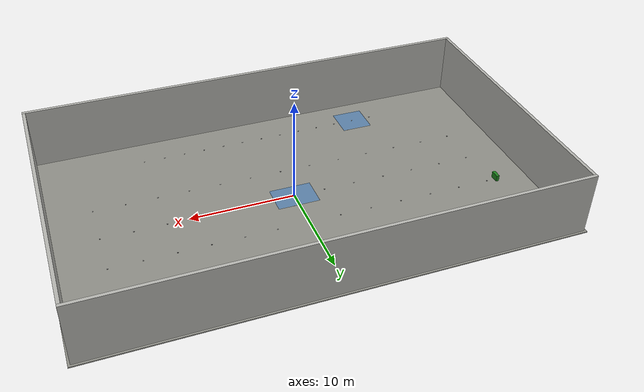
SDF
<sdf version="1.6">
 <world name="warehouse">
  <model name="warehouse_shell">
   <static>true</static>
   <link name="link">
    <visual name="floor_v">
     <pose>0.0000 0.0000 -0.0500 0 0 0.0000</pose>
     <geometry><box><size>45.0000 27.0000 0.1000</size></box></geometry>
     <material>
      <ambient>0.55 0.55 0.52 1</ambient>
      <diffuse>0.55 0.55 0.52 1</diffuse>
      <specular>0.1 0.1 0.1 1</specular>
     </material>
    </visual>
    <collision name="floor_c">
     <pose>0.0000 0.0000 -0.0500 0 0 0.0000</pose>
     <geometry><box><size>45.0000 27.0000 0.1000</size></box></geometry>
     <surface><friction><ode><mu>0.9</mu><mu2>0.9</mu2></ode></friction></surface>
    </collision>
    <visual name="wall_n_v">
     <pose>0.0000 13.1500 3.0000 0 0 0.0000</pose>
     <geometry><box><size>44.6000 0.3000 6.0000</size></box></geometry>
     <material>
      <ambient>0.7 0.7 0.68 1</ambient>
      <diffuse>0.7 0.7 0.68 1</diffuse>
      <specular>0.1 0.1 0.1 1</specular>
     </material>
    </visual>
    <collision name="wall_n_c">
     <pose>0.0000 13.1500 3.0000 0 0 0.0000</pose>
     <geometry><box><size>44.6000 0.3000 6.0000</size></box></geometry>
    </collision>
    <visual name="wall_s_v">
     <pose>0.0000 -13.1500 3.0000 0 0 0.0000</pose>
     <geometry><box><size>44.6000 0.3000 6.0000</size></box></geometry>
     <material>
      <ambient>0.7 0.7 0.68 1</ambient>
      <diffuse>0.7 0.7 0.68 1</diffuse>
      <specular>0.1 0.1 0.1 1</specular>
     </material>
    </visual>
    <collision name="wall_s_c">
     <pose>0.0000 -13.1500 3.0000 0 0 0.0000</pose>
     <geometry><box><size>44.6000 0.3000 6.0000</size></box></geometry>
    </collision>
    <visual name="wall_e_v">
     <pose>22.1500 0.0000 3.0000 0 0 0.0000</pose>
     <geometry><box><size>0.3000 26.0000 6.0000</size></box></geometry>
     <material>
      <ambient>0.7 0.7 0.68 1</ambient>
      <diffuse>0.7 0.7 0.68 1</diffuse>
      <specular>0.1 0.1 0.1 1</specular>
     </material>
    </visual>
    <collision name="wall_e_c">
     <pose>22.1500 0.0000 3.0000 0 0 0.0000</pose>
     <geometry><box><size>0.3000 26.0000 6.0000</size></box></geometry>
    </collision>
    <visual name="wall_w_v">
     <pose>-22.1500 0.0000 3.0000 0 0 0.0000</pose>
     <geometry><box><size>0.3000 26.0000 6.0000</size></box></geometry>
     <material>
      <ambient>0.7 0.7 0.68 1</ambient>
      <diffuse>0.7 0.7 0.68 1</diffuse>
      <specular>0.1 0.1 0.1 1</specular>
     </material>
    </visual>
    <collision name="wall_w_c">
     <pose>-22.1500 0.0000 3.0000 0 0 0.0000</pose>
     <geometry><box><size>0.3000 26.0000 6.0000</size></box></geometry>
    </collision>
    <visual name="slip_slip_patch_B_v">
     <pose>0.0000 0.0000 0.0005 0 0 0.0000</pose>
     <geometry><box><size>4.0000 2.8000 0.0010</size></box></geometry>
     <material>
      <ambient>0.35 0.5 0.65 1</ambient>
      <diffuse>0.35 0.5 0.65 1</diffuse>
      <specular>0.1 0.1 0.1 1</specular>
     </material>
    </visual>
    <collision name="slip_slip_patch_B_c">
     <pose>0.0000 0.0000 0.0005 0 0 0.0000</pose>
     <geometry><box><size>4.0000 2.8000 0.0010</size></box></geometry>
     <surface><friction><ode><mu>0.06</mu><mu2>0.06</mu2></ode></friction></surface>
    </collision>
    <visual name="slip_slip_patch_spin_v">
     <pose>-10.0000 -10.0000 0.0005 0 0 0.0000</pose>
     <geometry><box><size>3.0000 3.0000 0.0010</size></box></geometry>
     <material>
      <ambient>0.35 0.5 0.65 1</ambient>
      <diffuse>0.35 0.5 0.65 1</diffuse>
      <specular>0.1 0.1 0.1 1</specular>
     </material>
    </visual>
    <collision name="slip_slip_patch_spin_c">
     <pose>-10.0000 -10.0000 0.0005 0 0 0.0000</pose>
     <geometry><box><size>3.0000 3.0000 0.0010</size></box></geometry>
     <surface><friction><ode><mu>0.06</mu><mu2>0.06</mu2></ode></friction></surface>
    </collision>
    <visual name="qr0_v">
     <pose>-18.0000 4.0000 0.0015 0 0 0.0000</pose>
     <geometry><box><size>0.1200 0.1200 0.0010</size></box></geometry>
     <material>
      <ambient>0.02 0.02 0.02 1</ambient>
      <diffuse>0.02 0.02 0.02 1</diffuse>
      <specular>0.1 0.1 0.1 1</specular>
     </material>
    </visual>
    <visual name="qr0_in_v">
     <pose>-18.0000 4.0000 0.0021 0 0 0.0000</pose>
     <geometry><box><size>0.0480 0.0480 0.0010</size></box></geometry>
     <material>
      <ambient>0.95 0.95 0.95 1</ambient>
      <diffuse>0.95 0.95 0.95 1</diffuse>
      <specular>0.1 0.1 0.1 1</specular>
     </material>
    </visual>
    <visual name="qr1_v">
     <pose>-15.0000 4.0000 0.0015 0 0 0.0000</pose>
     <geometry><box><size>0.1200 0.1200 0.0010</size></box></geometry>
     <material>
      <ambient>0.02 0.02 0.02 1</ambient>
      <diffuse>0.02 0.02 0.02 1</diffuse>
      <specular>0.1 0.1 0.1 1</specular>
     </material>
    </visual>
    <visual name="qr1_in_v">
     <pose>-15.0000 4.0000 0.0021 0 0 0.0000</pose>
     <geometry><box><size>0.0480 0.0480 0.0010</size></box></geometry>
     <material>
      <ambient>0.95 0.95 0.95 1</ambient>
      <diffuse>0.95 0.95 0.95 1</diffuse>
      <specular>0.1 0.1 0.1 1</specular>
     </material>
    </visual>
    <visual name="qr2_v">
     <pose>-12.0000 4.0000 0.0015 0 0 0.0000</pose>
     <geometry><box><size>0.1200 0.1200 0.0010</size></box></geometry>
     <material>
      <ambient>0.02 0.02 0.02 1</ambient>
      <diffuse>0.02 0.02 0.02 1</diffuse>
      <specular>0.1 0.1 0.1 1</specular>
     </material>
    </visual>
    <visual name="qr2_in_v">
     <pose>-12.0000 4.0000 0.0021 0 0 0.0000</pose>
     <geometry><box><size>0.0480 0.0480 0.0010</size></box></geometry>
     <material>
      <ambient>0.95 0.95 0.95 1</ambient>
      <diffuse>0.95 0.95 0.95 1</diffuse>
      <specular>0.1 0.1 0.1 1</specular>
     </material>
    </visual>
    <visual name="qr3_v">
     <pose>-9.0000 4.0000 0.0015 0 0 0.0000</pose>
     <geometry><box><size>0.1200 0.1200 0.0010</size></box></geometry>
     <material>
      <ambient>0.02 0.02 0.02 1</ambient>
      <diffuse>0.02 0.02 0.02 1</diffuse>
      <specular>0.1 0.1 0.1 1</specular>
     </material>
    </visual>
    <visual name="qr3_in_v">
     <pose>-9.0000 4.0000 0.0021 0 0 0.0000</pose>
     <geometry><box><size>0.0480 0.0480 0.0010</size></box></geometry>
     <material>
      <ambient>0.95 0.95 0.95 1</ambient>
      <diffuse>0.95 0.95 0.95 1</diffuse>
      <specular>0.1 0.1 0.1 1</specular>
     </material>
    </visual>
    <visual name="qr4_v">
     <pose>-6.0000 4.0000 0.0015 0 0 0.0000</pose>
     <geometry><box><size>0.1200 0.1200 0.0010</size></box></geometry>
     <material>
      <ambient>0.02 0.02 0.02 1</ambient>
      <diffuse>0.02 0.02 0.02 1</diffuse>
      <specular>0.1 0.1 0.1 1</specular>
     </material>
    </visual>
    <visual name="qr4_in_v">
     <pose>-6.0000 4.0000 0.0021 0 0 0.0000</pose>
     <geometry><box><size>0.0480 0.0480 0.0010</size></box></geometry>
     <material>
      <ambient>0.95 0.95 0.95 1</ambient>
      <diffuse>0.95 0.95 0.95 1</diffuse>
      <specular>0.1 0.1 0.1 1</specular>
     </material>
    </visual>
    <visual name="qr5_v">
     <pose>-3.0000 4.0000 0.0015 0 0 0.0000</pose>
     <geometry><box><size>0.1200 0.1200 0.0010</size></box></geometry>
     <material>
      <ambient>0.02 0.02 0.02 1</ambient>
      <diffuse>0.02 0.02 0.02 1</diffuse>
      <specular>0.1 0.1 0.1 1</specular>
     </material>
    </visual>
    <visual name="qr5_in_v">
     <pose>-3.0000 4.0000 0.0021 0 0 0.0000</pose>
     <geometry><box><size>0.0480 0.0480 0.0010</size></box></geometry>
     <material>
      <ambient>0.95 0.95 0.95 1</ambient>
      <diffuse>0.95 0.95 0.95 1</diffuse>
      <specular>0.1 0.1 0.1 1</specular>
     </material>
    </visual>
    <visual name="qr6_v">
     <pose>0.0000 4.0000 0.0015 0 0 0.0000</pose>
     <geometry><box><size>0.1200 0.1200 0.0010</size></box></geometry>
     <material>
      <ambient>0.02 0.02 0.02 1</ambient>
      <diffuse>0.02 0.02 0.02 1</diffuse>
      <specular>0.1 0.1 0.1 1</specular>
     </material>
    </visual>
    <visual name="qr6_in_v">
     <pose>0.0000 4.0000 0.0021 0 0 0.0000</pose>
     <geometry><box><size>0.0480 0.0480 0.0010</size></box></geometry>
     <material>
      <ambient>0.95 0.95 0.95 1</ambient>
      <diffuse>0.95 0.95 0.95 1</diffuse>
      <specular>0.1 0.1 0.1 1</specular>
     </material>
    </visual>
    <visual name="qr7_v">
     <pose>3.0000 4.0000 0.0015 0 0 0.0000</pose>
     <geometry><box><size>0.1200 0.1200 0.0010</size></box></geometry>
     <material>
      <ambient>0.02 0.02 0.02 1</ambient>
      <diffuse>0.02 0.02 0.02 1</diffuse>
      <specular>0.1 0.1 0.1 1</specular>
     </material>
    </visual>
    <visual name="qr7_in_v">
     <pose>3.0000 4.0000 0.0021 0 0 0.0000</pose>
     <geometry><box><size>0.0480 0.0480 0.0010</size></box></geometry>
     <material>
      <ambient>0.95 0.95 0.95 1</ambient>
      <diffuse>0.95 0.95 0.95 1</diffuse>
      <specular>0.1 0.1 0.1 1</specular>
     </material>
    </visual>
    <visual name="qr8_v">
     <pose>6.0000 4.0000 0.0015 0 0 0.0000</pose>
     <geometry><box><size>0.1200 0.1200 0.0010</size></box></geometry>
     <material>
      <ambient>0.02 0.02 0.02 1</ambient>
      <diffuse>0.02 0.02 0.02 1</diffuse>
      <specular>0.1 0.1 0.1 1</specular>
     </material>
    </visual>
    <visual name="qr8_in_v">
     <pose>6.0000 4.0000 0.0021 0 0 0.0000</pose>
     <geometry><box><size>0.0480 0.0480 0.0010</size></box></geometry>
     <material>
      <ambient>0.95 0.95 0.95 1</ambient>
      <diffuse>0.95 0.95 0.95 1</diffuse>
      <specular>0.1 0.1 0.1 1</specular>
     </material>
    </visual>
    <visual name="qr9_v">
     <pose>9.0000 4.0000 0.0015 0 0 0.0000</pose>
     <geometry><box><size>0.1200 0.1200 0.0010</size></box></geometry>
     <material>
      <ambient>0.02 0.02 0.02 1</ambient>
      <diffuse>0.02 0.02 0.02 1</diffuse>
      <specular>0.1 0.1 0.1 1</specular>
     </material>
    </visual>
    <visual name="qr9_in_v">
     <pose>9.0000 4.0000 0.0021 0 0 0.0000</pose>
     <geometry><box><size>0.0480 0.0480 0.0010</size></box></geometry>
     <material>
      <ambient>0.95 0.95 0.95 1</ambient>
      <diffuse>0.95 0.95 0.95 1</diffuse>
      <specular>0.1 0.1 0.1 1</specular>
     </material>
    </visual>
    <visual name="qr10_v">
     <pose>12.0000 4.0000 0.0015 0 0 0.0000</pose>
     <geometry><box><size>0.1200 0.1200 0.0010</size></box></geometry>
     <material>
      <ambient>0.02 0.02 0.02 1</ambient>
      <diffuse>0.02 0.02 0.02 1</diffuse>
      <specular>0.1 0.1 0.1 1</specular>
     </material>
    </visual>
    <visual name="qr10_in_v">
     <pose>12.0000 4.0000 0.0021 0 0 0.0000</pose>
     <geometry><box><size>0.0480 0.0480 0.0010</size></box></geometry>
     <material>
      <ambient>0.95 0.95 0.95 1</ambient>
      <diffuse>0.95 0.95 0.95 1</diffuse>
      <specular>0.1 0.1 0.1 1</specular>
     </material>
    </visual>
    <visual name="qr11_v">
     <pose>15.0000 4.0000 0.0015 0 0 0.0000</pose>
     <geometry><box><size>0.1200 0.1200 0.0010</size></box></geometry>
     <material>
      <ambient>0.02 0.02 0.02 1</ambient>
      <diffuse>0.02 0.02 0.02 1</diffuse>
      <specular>0.1 0.1 0.1 1</specular>
     </material>
    </visual>
    <visual name="qr11_in_v">
     <pose>15.0000 4.0000 0.0021 0 0 0.0000</pose>
     <geometry><box><size>0.0480 0.0480 0.0010</size></box></geometry>
     <material>
      <ambient>0.95 0.95 0.95 1</ambient>
      <diffuse>0.95 0.95 0.95 1</diffuse>
      <specular>0.1 0.1 0.1 1</specular>
     </material>
    </visual>
    <visual name="qr12_v">
     <pose>18.0000 4.0000 0.0015 0 0 0.0000</pose>
     <geometry><box><size>0.1200 0.1200 0.0010</size></box></geometry>
     <material>
      <ambient>0.02 0.02 0.02 1</ambient>
      <diffuse>0.02 0.02 0.02 1</diffuse>
      <specular>0.1 0.1 0.1 1</specular>
     </material>
    </visual>
    <visual name="qr12_in_v">
     <pose>18.0000 4.0000 0.0021 0 0 0.0000</pose>
     <geometry><box><size>0.0480 0.0480 0.0010</size></box></geometry>
     <material>
      <ambient>0.95 0.95 0.95 1</ambient>
      <diffuse>0.95 0.95 0.95 1</diffuse>
      <specular>0.1 0.1 0.1 1</specular>
     </material>
    </visual>
    <visual name="qr13_v">
     <pose>-18.0000 0.0000 0.0015 0 0 0.0000</pose>
     <geometry><box><size>0.1200 0.1200 0.0010</size></box></geometry>
     <material>
      <ambient>0.02 0.02 0.02 1</ambient>
      <diffuse>0.02 0.02 0.02 1</diffuse>
      <specular>0.1 0.1 0.1 1</specular>
     </material>
    </visual>
    <visual name="qr13_in_v">
     <pose>-18.0000 0.0000 0.0021 0 0 0.0000</pose>
     <geometry><box><size>0.0480 0.0480 0.0010</size></box></geometry>
     <material>
      <ambient>0.95 0.95 0.95 1</ambient>
      <diffuse>0.95 0.95 0.95 1</diffuse>
      <specular>0.1 0.1 0.1 1</specular>
     </material>
    </visual>
    <visual name="qr14_v">
     <pose>-15.0000 0.0000 0.0015 0 0 0.0000</pose>
     <geometry><box><size>0.1200 0.1200 0.0010</size></box></geometry>
     <material>
      <ambient>0.02 0.02 0.02 1</ambient>
      <diffuse>0.02 0.02 0.02 1</diffuse>
      <specular>0.1 0.1 0.1 1</specular>
     </material>
    </visual>
    <visual name="qr14_in_v">
     <pose>-15.0000 0.0000 0.0021 0 0 0.0000</pose>
     <geometry><box><size>0.0480 0.0480 0.0010</size></box></geometry>
     <material>
      <ambient>0.95 0.95 0.95 1</ambient>
      <diffuse>0.95 0.95 0.95 1</diffuse>
      <specular>0.1 0.1 0.1 1</specular>
     </material>
    </visual>
    <visual name="qr15_v">
     <pose>-12.0000 0.0000 0.0015 0 0 0.0000</pose>
     <geometry><box><size>0.1200 0.1200 0.0010</size></box></geometry>
     <material>
      <ambient>0.02 0.02 0.02 1</ambient>
      <diffuse>0.02 0.02 0.02 1</diffuse>
      <specular>0.1 0.1 0.1 1</specular>
     </material>
    </visual>
    <visual name="qr15_in_v">
     <pose>-12.0000 0.0000 0.0021 0 0 0.0000</pose>
     <geometry><box><size>0.0480 0.0480 0.0010</size></box></geometry>
     <material>
      <ambient>0.95 0.95 0.95 1</ambient>
      <diffuse>0.95 0.95 0.95 1</diffuse>
      <specular>0.1 0.1 0.1 1</specular>
     </material>
    </visual>
    <visual name="qr16_v">
     <pose>-9.0000 0.0000 0.0015 0 0 0.0000</pose>
     <geometry><box><size>0.1200 0.1200 0.0010</size></box></geometry>
     <material>
      <ambient>0.02 0.02 0.02 1</ambient>
      <diffuse>0.02 0.02 0.02 1</diffuse>
      <specular>0.1 0.1 0.1 1</specular>
     </material>
    </visual>
    <visual name="qr16_in_v">
     <pose>-9.0000 0.0000 0.0021 0 0 0.0000</pose>
     <geometry><box><size>0.0480 0.0480 0.0010</size></box></geometry>
     <material>
      <ambient>0.95 0.95 0.95 1</ambient>
      <diffuse>0.95 0.95 0.95 1</diffuse>
      <specular>0.1 0.1 0.1 1</specular>
     </material>
    </visual>
    <visual name="qr17_v">
     <pose>-6.0000 0.0000 0.0015 0 0 0.0000</pose>
     <geometry><box><size>0.1200 0.1200 0.0010</size></box></geometry>
     <material>
      <ambient>0.02 0.02 0.02 1</ambient>
      <diffuse>0.02 0.02 0.02 1</diffuse>
      <specular>0.1 0.1 0.1 1</specular>
     </material>
    </visual>
    <visual name="qr17_in_v">
     <pose>-6.0000 0.0000 0.0021 0 0 0.0000</pose>
     <geometry><box><size>0.0480 0.0480 0.0010</size></box></geometry>
     <material>
      <ambient>0.95 0.95 0.95 1</ambient>
      <diffuse>0.95 0.95 0.95 1</diffuse>
      <specular>0.1 0.1 0.1 1</specular>
     </material>
    </visual>
    <visual name="qr18_v">
     <pose>-3.0000 0.0000 0.0015 0 0 0.0000</pose>
     <geometry><box><size>0.1200 0.1200 0.0010</size></box></geometry>
     <material>
      <ambient>0.02 0.02 0.02 1</ambient>
      <diffuse>0.02 0.02 0.02 1</diffuse>
      <specular>0.1 0.1 0.1 1</specular>
     </material>
    </visual>
    <visual name="qr18_in_v">
     <pose>-3.0000 0.0000 0.0021 0 0 0.0000</pose>
     <geometry><box><size>0.0480 0.0480 0.0010</size></box></geometry>
     <material>
      <ambient>0.95 0.95 0.95 1</ambient>
      <diffuse>0.95 0.95 0.95 1</diffuse>
      <specular>0.1 0.1 0.1 1</specular>
     </material>
    </visual>
    <visual name="qr19_v">
     <pose>0.0000 0.0000 0.0015 0 0 0.0000</pose>
     <geometry><box><size>0.1200 0.1200 0.0010</size></box></geometry>
     <material>
      <ambient>0.02 0.02 0.02 1</ambient>
      <diffuse>0.02 0.02 0.02 1</diffuse>
      <specular>0.1 0.1 0.1 1</specular>
     </material>
    </visual>
    <visual name="qr19_in_v">
     <pose>0.0000 0.0000 0.0021 0 0 0.0000</pose>
     <geometry><box><size>0.0480 0.0480 0.0010</size></box></geometry>
     <material>
      <ambient>0.95 0.95 0.95 1</ambient>
      <diffuse>0.95 0.95 0.95 1</diffuse>
      <specular>0.1 0.1 0.1 1</specular>
     </material>
    </visual>
    <visual name="qr20_v">
     <pose>3.0000 0.0000 0.0015 0 0 0.0000</pose>
     <geometry><box><size>0.1200 0.1200 0.0010</size></box></geometry>
     <material>
      <ambient>0.02 0.02 0.02 1</ambient>
      <diffuse>0.02 0.02 0.02 1</diffuse>
      <specular>0.1 0.1 0.1 1</specular>
     </material>
    </visual>
    <visual name="qr20_in_v">
     <pose>3.0000 0.0000 0.0021 0 0 0.0000</pose>
     <geometry><box><size>0.0480 0.0480 0.0010</size></box></geometry>
     <material>
      <ambient>0.95 0.95 0.95 1</ambient>
      <diffuse>0.95 0.95 0.95 1</diffuse>
      <specular>0.1 0.1 0.1 1</specular>
     </material>
    </visual>
    <visual name="qr21_v">
     <pose>6.0000 0.0000 0.0015 0 0 0.0000</pose>
     <geometry><box><size>0.1200 0.1200 0.0010</size></box></geometry>
     <material>
      <ambient>0.02 0.02 0.02 1</ambient>
      <diffuse>0.02 0.02 0.02 1</diffuse>
      <specular>0.1 0.1 0.1 1</specular>
     </material>
    </visual>
    <visual name="qr21_in_v">
     <pose>6.0000 0.0000 0.0021 0 0 0.0000</pose>
     <geometry><box><size>0.0480 0.0480 0.0010</size></box></geometry>
     <material>
      <ambient>0.95 0.95 0.95 1</ambient>
      <diffuse>0.95 0.95 0.95 1</diffuse>
      <specular>0.1 0.1 0.1 1</specular>
     </material>
    </visual>
    <visual name="qr22_v">
     <pose>9.0000 0.0000 0.0015 0 0 0.0000</pose>
     <geometry><box><size>0.1200 0.1200 0.0010</size></box></geometry>
     <material>
      <ambient>0.02 0.02 0.02 1</ambient>
      <diffuse>0.02 0.02 0.02 1</diffuse>
      <specular>0.1 0.1 0.1 1</specular>
     </material>
    </visual>
    <visual name="qr22_in_v">
     <pose>9.0000 0.0000 0.0021 0 0 0.0000</pose>
     <geometry><box><size>0.0480 0.0480 0.0010</size></box></geometry>
     <material>
      <ambient>0.95 0.95 0.95 1</ambient>
      <diffuse>0.95 0.95 0.95 1</diffuse>
      <specular>0.1 0.1 0.1 1</specular>
     </material>
    </visual>
    <visual name="qr23_v">
     <pose>12.0000 0.0000 0.0015 0 0 0.0000</pose>
     <geometry><box><size>0.1200 0.1200 0.0010</size></box></geometry>
     <material>
      <ambient>0.02 0.02 0.02 1</ambient>
      <diffuse>0.02 0.02 0.02 1</diffuse>
      <specular>0.1 0.1 0.1 1</specular>
     </material>
    </visual>
    <visual name="qr23_in_v">
     <pose>12.0000 0.0000 0.0021 0 0 0.0000</pose>
     <geometry><box><size>0.0480 0.0480 0.0010</size></box></geometry>
     <material>
      <ambient>0.95 0.95 0.95 1</ambient>
      <diffuse>0.95 0.95 0.95 1</diffuse>
      <specular>0.1 0.1 0.1 1</specular>
     </material>
    </visual>
    <visual name="qr24_v">
     <pose>15.0000 0.0000 0.0015 0 0 0.0000</pose>
     <geometry><box><size>0.1200 0.1200 0.0010</size></box></geometry>
     <material>
      <ambient>0.02 0.02 0.02 1</ambient>
      <diffuse>0.02 0.02 0.02 1</diffuse>
      <specular>0.1 0.1 0.1 1</specular>
     </material>
    </visual>
    <visual name="qr24_in_v">
     <pose>15.0000 0.0000 0.0021 0 0 0.0000</pose>
     <geometry><box><size>0.0480 0.0480 0.0010</size></box></geometry>
     <material>
      <ambient>0.95 0.95 0.95 1</ambient>
      <diffuse>0.95 0.95 0.95 1</diffuse>
      <specular>0.1 0.1 0.1 1</specular>
     </material>
    </visual>
    <visual name="qr25_v">
     <pose>18.0000 0.0000 0.0015 0 0 0.0000</pose>
     <geometry><box><size>0.1200 0.1200 0.0010</size></box></geometry>
     <material>
      <ambient>0.02 0.02 0.02 1</ambient>
      <diffuse>0.02 0.02 0.02 1</diffuse>
      <specular>0.1 0.1 0.1 1</specular>
     </material>
    </visual>
    <visual name="qr25_in_v">
     <pose>18.0000 0.0000 0.0021 0 0 0.0000</pose>
     <geometry><box><size>0.0480 0.0480 0.0010</size></box></geometry>
     <material>
      <ambient>0.95 0.95 0.95 1</ambient>
      <diffuse>0.95 0.95 0.95 1</diffuse>
      <specular>0.1 0.1 0.1 1</specular>
     </material>
    </visual>
    <visual name="qr26_v">
     <pose>-18.0000 -4.0000 0.0015 0 0 0.0000</pose>
     <geometry><box><size>0.1200 0.1200 0.0010</size></box></geometry>
     <material>
      <ambient>0.02 0.02 0.02 1</ambient>
      <diffuse>0.02 0.02 0.02 1</diffuse>
      <specular>0.1 0.1 0.1 1</specular>
     </material>
    </visual>
    <visual name="qr26_in_v">
     <pose>-18.0000 -4.0000 0.0021 0 0 0.0000</pose>
     <geometry><box><size>0.0480 0.0480 0.0010</size></box></geometry>
     <material>
      <ambient>0.95 0.95 0.95 1</ambient>
      <diffuse>0.95 0.95 0.95 1</diffuse>
      <specular>0.1 0.1 0.1 1</specular>
     </material>
    </visual>
    <visual name="qr27_v">
     <pose>-15.0000 -4.0000 0.0015 0 0 0.0000</pose>
     <geometry><box><size>0.1200 0.1200 0.0010</size></box></geometry>
     <material>
      <ambient>0.02 0.02 0.02 1</ambient>
      <diffuse>0.02 0.02 0.02 1</diffuse>
      <specular>0.1 0.1 0.1 1</specular>
     </material>
    </visual>
    <visual name="qr27_in_v">
     <pose>-15.0000 -4.0000 0.0021 0 0 0.0000</pose>
     <geometry><box><size>0.0480 0.0480 0.0010</size></box></geometry>
     <material>
      <ambient>0.95 0.95 0.95 1</ambient>
      <diffuse>0.95 0.95 0.95 1</diffuse>
      <specular>0.1 0.1 0.1 1</specular>
     </material>
    </visual>
    <visual name="qr28_v">
     <pose>-12.0000 -4.0000 0.0015 0 0 0.0000</pose>
     <geometry><box><size>0.1200 0.1200 0.0010</size></box></geometry>
     <material>
      <ambient>0.02 0.02 0.02 1</ambient>
      <diffuse>0.02 0.02 0.02 1</diffuse>
      <specular>0.1 0.1 0.1 1</specular>
     </material>
    </visual>
    <visual name="qr28_in_v">
     <pose>-12.0000 -4.0000 0.0021 0 0 0.0000</pose>
     <geometry><box><size>0.0480 0.0480 0.0010</size></box></geometry>
     <material>
      <ambient>0.95 0.95 0.95 1</ambient>
      <diffuse>0.95 0.95 0.95 1</diffuse>
      <specular>0.1 0.1 0.1 1</specular>
     </material>
    </visual>
    <visual name="qr29_v">
     <pose>-9.0000 -4.0000 0.0015 0 0 0.0000</pose>
     <geometry><box><size>0.1200 0.1200 0.0010</size></box></geometry>
     <material>
      <ambient>0.02 0.02 0.02 1</ambient>
      <diffuse>0.02 0.02 0.02 1</diffuse>
      <specular>0.1 0.1 0.1 1</specular>
     </material>
    </visual>
    <visual name="qr29_in_v">
     <pose>-9.0000 -4.0000 0.0021 0 0 0.0000</pose>
     <geometry><box><size>0.0480 0.0480 0.0010</size></box></geometry>
     <material>
      <ambient>0.95 0.95 0.95 1</ambient>
      <diffuse>0.95 0.95 0.95 1</diffuse>
      <specular>0.1 0.1 0.1 1</specular>
     </material>
    </visual>
    <visual name="qr30_v">
     <pose>-6.0000 -4.0000 0.0015 0 0 0.0000</pose>
     <geometry><box><size>0.1200 0.1200 0.0010</size></box></geometry>
     <material>
      <ambient>0.02 0.02 0.02 1</ambient>
      <diffuse>0.02 0.02 0.02 1</diffuse>
      <specular>0.1 0.1 0.1 1</specular>
     </material>
    </visual>
    <visual name="qr30_in_v">
     <pose>-6.0000 -4.0000 0.0021 0 0 0.0000</pose>
     <geometry><box><size>0.0480 0.0480 0.0010</size></box></geometry>
     <material>
      <ambient>0.95 0.95 0.95 1</ambient>
      <diffuse>0.95 0.95 0.95 1</diffuse>
      <specular>0.1 0.1 0.1 1</specular>
     </material>
    </visual>
    <visual name="qr31_v">
     <pose>-3.0000 -4.0000 0.0015 0 0 0.0000</pose>
     <geometry><box><size>0.1200 0.1200 0.0010</size></box></geometry>
     <material>
      <ambient>0.02 0.02 0.02 1</ambient>
      <diffuse>0.02 0.02 0.02 1</diffuse>
      <specular>0.1 0.1 0.1 1</specular>
     </material>
    </visual>
    <visual name="qr31_in_v">
     <pose>-3.0000 -4.0000 0.0021 0 0 0.0000</pose>
     <geometry><box><size>0.0480 0.0480 0.0010</size></box></geometry>
     <material>
      <ambient>0.95 0.95 0.95 1</ambient>
      <diffuse>0.95 0.95 0.95 1</diffuse>
      <specular>0.1 0.1 0.1 1</specular>
     </material>
    </visual>
    <visual name="qr32_v">
     <pose>0.0000 -4.0000 0.0015 0 0 0.0000</pose>
     <geometry><box><size>0.1200 0.1200 0.0010</size></box></geometry>
     <material>
      <ambient>0.02 0.02 0.02 1</ambient>
      <diffuse>0.02 0.02 0.02 1</diffuse>
      <specular>0.1 0.1 0.1 1</specular>
     </material>
    </visual>
    <visual name="qr32_in_v">
     <pose>0.0000 -4.0000 0.0021 0 0 0.0000</pose>
     <geometry><box><size>0.0480 0.0480 0.0010</size></box></geometry>
     <material>
      <ambient>0.95 0.95 0.95 1</ambient>
      <diffuse>0.95 0.95 0.95 1</diffuse>
      <specular>0.1 0.1 0.1 1</specular>
     </material>
    </visual>
    <visual name="qr33_v">
     <pose>3.0000 -4.0000 0.0015 0 0 0.0000</pose>
     <geometry><box><size>0.1200 0.1200 0.0010</size></box></geometry>
     <material>
      <ambient>0.02 0.02 0.02 1</ambient>
      <diffuse>0.02 0.02 0.02 1</diffuse>
      <specular>0.1 0.1 0.1 1</specular>
     </material>
    </visual>
    <visual name="qr33_in_v">
     <pose>3.0000 -4.0000 0.0021 0 0 0.0000</pose>
     <geometry><box><size>0.0480 0.0480 0.0010</size></box></geometry>
     <material>
      <ambient>0.95 0.95 0.95 1</ambient>
      <diffuse>0.95 0.95 0.95 1</diffuse>
      <specular>0.1 0.1 0.1 1</specular>
     </material>
    </visual>
    <visual name="qr34_v">
     <pose>6.0000 -4.0000 0.0015 0 0 0.0000</pose>
     <geometry><box><size>0.1200 0.1200 0.0010</size></box></geometry>
     <material>
      <ambient>0.02 0.02 0.02 1</ambient>
      <diffuse>0.02 0.02 0.02 1</diffuse>
      <specular>0.1 0.1 0.1 1</specular>
     </material>
    </visual>
    <visual name="qr34_in_v">
     <pose>6.0000 -4.0000 0.0021 0 0 0.0000</pose>
     <geometry><box><size>0.0480 0.0480 0.0010</size></box></geometry>
     <material>
      <ambient>0.95 0.95 0.95 1</ambient>
      <diffuse>0.95 0.95 0.95 1</diffuse>
      <specular>0.1 0.1 0.1 1</specular>
     </material>
    </visual>
    <visual name="qr35_v">
     <pose>9.0000 -4.0000 0.0015 0 0 0.0000</pose>
     <geometry><box><size>0.1200 0.1200 0.0010</size></box></geometry>
     <material>
      <ambient>0.02 0.02 0.02 1</ambient>
      <diffuse>0.02 0.02 0.02 1</diffuse>
      <specular>0.1 0.1 0.1 1</specular>
     </material>
    </visual>
    <visual name="qr35_in_v">
     <pose>9.0000 -4.0000 0.0021 0 0 0.0000</pose>
     <geometry><box><size>0.0480 0.0480 0.0010</size></box></geometry>
     <material>
      <ambient>0.95 0.95 0.95 1</ambient>
      <diffuse>0.95 0.95 0.95 1</diffuse>
      <specular>0.1 0.1 0.1 1</specular>
     </material>
    </visual>
    <visual name="qr36_v">
     <pose>12.0000 -4.0000 0.0015 0 0 0.0000</pose>
     <geometry><box><size>0.1200 0.1200 0.0010</size></box></geometry>
     <material>
      <ambient>0.02 0.02 0.02 1</ambient>
      <diffuse>0.02 0.02 0.02 1</diffuse>
      <specular>0.1 0.1 0.1 1</specular>
     </material>
    </visual>
    <visual name="qr36_in_v">
     <pose>12.0000 -4.0000 0.0021 0 0 0.0000</pose>
     <geometry><box><size>0.0480 0.0480 0.0010</size></box></geometry>
     <material>
      <ambient>0.95 0.95 0.95 1</ambient>
      <diffuse>0.95 0.95 0.95 1</diffuse>
      <specular>0.1 0.1 0.1 1</specular>
     </material>
    </visual>
    <visual name="qr37_v">
     <pose>15.0000 -4.0000 0.0015 0 0 0.0000</pose>
     <geometry><box><size>0.1200 0.1200 0.0010</size></box></geometry>
     <material>
      <ambient>0.02 0.02 0.02 1</ambient>
      <diffuse>0.02 0.02 0.02 1</diffuse>
      <specular>0.1 0.1 0.1 1</specular>
     </material>
    </visual>
    <visual name="qr37_in_v">
     <pose>15.0000 -4.0000 0.0021 0 0 0.0000</pose>
     <geometry><box><size>0.0480 0.0480 0.0010</size></box></geometry>
     <material>
      <ambient>0.95 0.95 0.95 1</ambient>
      <diffuse>0.95 0.95 0.95 1</diffuse>
      <specular>0.1 0.1 0.1 1</specular>
     </material>
    </visual>
    <visual name="qr38_v">
     <pose>18.0000 -4.0000 0.0015 0 0 0.0000</pose>
     <geometry><box><size>0.1200 0.1200 0.0010</size></box></geometry>
     <material>
      <ambient>0.02 0.02 0.02 1</ambient>
      <diffuse>0.02 0.02 0.02 1</diffuse>
      <specular>0.1 0.1 0.1 1</specular>
     </material>
    </visual>
    <visual name="qr38_in_v">
     <pose>18.0000 -4.0000 0.0021 0 0 0.0000</pose>
     <geometry><box><size>0.0480 0.0480 0.0010</size></box></geometry>
     <material>
      <ambient>0.95 0.95 0.95 1</ambient>
      <diffuse>0.95 0.95 0.95 1</diffuse>
      <specular>0.1 0.1 0.1 1</specular>
     </material>
    </visual>
    <visual name="qr39_v">
     <pose>-12.0000 10.2500 0.0015 0 0 0.0000</pose>
     <geometry><box><size>0.1200 0.1200 0.0010</size></box></geometry>
     <material>
      <ambient>0.02 0.02 0.02 1</ambient>
      <diffuse>0.02 0.02 0.02 1</diffuse>
      <specular>0.1 0.1 0.1 1</specular>
     </material>
    </visual>
    <visual name="qr39_in_v">
     <pose>-12.0000 10.2500 0.0021 0 0 0.0000</pose>
     <geometry><box><size>0.0480 0.0480 0.0010</size></box></geometry>
     <material>
      <ambient>0.95 0.95 0.95 1</ambient>
      <diffuse>0.95 0.95 0.95 1</diffuse>
      <specular>0.1 0.1 0.1 1</specular>
     </material>
    </visual>
    <visual name="qr40_v">
     <pose>-9.0000 10.2500 0.0015 0 0 0.0000</pose>
     <geometry><box><size>0.1200 0.1200 0.0010</size></box></geometry>
     <material>
      <ambient>0.02 0.02 0.02 1</ambient>
      <diffuse>0.02 0.02 0.02 1</diffuse>
      <specular>0.1 0.1 0.1 1</specular>
     </material>
    </visual>
    <visual name="qr40_in_v">
     <pose>-9.0000 10.2500 0.0021 0 0 0.0000</pose>
     <geometry><box><size>0.0480 0.0480 0.0010</size></box></geometry>
     <material>
      <ambient>0.95 0.95 0.95 1</ambient>
      <diffuse>0.95 0.95 0.95 1</diffuse>
      <specular>0.1 0.1 0.1 1</specular>
     </material>
    </visual>
    <visual name="qr41_v">
     <pose>-6.0000 10.2500 0.0015 0 0 0.0000</pose>
     <geometry><box><size>0.1200 0.1200 0.0010</size></box></geometry>
     <material>
      <ambient>0.02 0.02 0.02 1</ambient>
      <diffuse>0.02 0.02 0.02 1</diffuse>
      <specular>0.1 0.1 0.1 1</specular>
     </material>
    </visual>
    <visual name="qr41_in_v">
     <pose>-6.0000 10.2500 0.0021 0 0 0.0000</pose>
     <geometry><box><size>0.0480 0.0480 0.0010</size></box></geometry>
     <material>
      <ambient>0.95 0.95 0.95 1</ambient>
      <diffuse>0.95 0.95 0.95 1</diffuse>
      <specular>0.1 0.1 0.1 1</specular>
     </material>
    </visual>
    <visual name="qr42_v">
     <pose>-3.0000 10.2500 0.0015 0 0 0.0000</pose>
     <geometry><box><size>0.1200 0.1200 0.0010</size></box></geometry>
     <material>
      <ambient>0.02 0.02 0.02 1</ambient>
      <diffuse>0.02 0.02 0.02 1</diffuse>
      <specular>0.1 0.1 0.1 1</specular>
     </material>
    </visual>
    <visual name="qr42_in_v">
     <pose>-3.0000 10.2500 0.0021 0 0 0.0000</pose>
     <geometry><box><size>0.0480 0.0480 0.0010</size></box></geometry>
     <material>
      <ambient>0.95 0.95 0.95 1</ambient>
      <diffuse>0.95 0.95 0.95 1</diffuse>
      <specular>0.1 0.1 0.1 1</specular>
     </material>
    </visual>
    <visual name="qr43_v">
     <pose>0.0000 10.2500 0.0015 0 0 0.0000</pose>
     <geometry><box><size>0.1200 0.1200 0.0010</size></box></geometry>
     <material>
      <ambient>0.02 0.02 0.02 1</ambient>
      <diffuse>0.02 0.02 0.02 1</diffuse>
      <specular>0.1 0.1 0.1 1</specular>
     </material>
    </visual>
    <visual name="qr43_in_v">
     <pose>0.0000 10.2500 0.0021 0 0 0.0000</pose>
     <geometry><box><size>0.0480 0.0480 0.0010</size></box></geometry>
     <material>
      <ambient>0.95 0.95 0.95 1</ambient>
      <diffuse>0.95 0.95 0.95 1</diffuse>
      <specular>0.1 0.1 0.1 1</specular>
     </material>
    </visual>
    <visual name="qr44_v">
     <pose>3.0000 10.2500 0.0015 0 0 0.0000</pose>
     <geometry><box><size>0.1200 0.1200 0.0010</size></box></geometry>
     <material>
      <ambient>0.02 0.02 0.02 1</ambient>
      <diffuse>0.02 0.02 0.02 1</diffuse>
      <specular>0.1 0.1 0.1 1</specular>
     </material>
    </visual>
    <visual name="qr44_in_v">
     <pose>3.0000 10.2500 0.0021 0 0 0.0000</pose>
     <geometry><box><size>0.0480 0.0480 0.0010</size></box></geometry>
     <material>
      <ambient>0.95 0.95 0.95 1</ambient>
      <diffuse>0.95 0.95 0.95 1</diffuse>
      <specular>0.1 0.1 0.1 1</specular>
     </material>
    </visual>
    <visual name="qr45_v">
     <pose>6.0000 10.2500 0.0015 0 0 0.0000</pose>
     <geometry><box><size>0.1200 0.1200 0.0010</size></box></geometry>
     <material>
      <ambient>0.02 0.02 0.02 1</ambient>
      <diffuse>0.02 0.02 0.02 1</diffuse>
      <specular>0.1 0.1 0.1 1</specular>
     </material>
    </visual>
    <visual name="qr45_in_v">
     <pose>6.0000 10.2500 0.0021 0 0 0.0000</pose>
     <geometry><box><size>0.0480 0.0480 0.0010</size></box></geometry>
     <material>
      <ambient>0.95 0.95 0.95 1</ambient>
      <diffuse>0.95 0.95 0.95 1</diffuse>
      <specular>0.1 0.1 0.1 1</specular>
     </material>
    </visual>
    <visual name="qr46_v">
     <pose>9.0000 10.2500 0.0015 0 0 0.0000</pose>
     <geometry><box><size>0.1200 0.1200 0.0010</size></box></geometry>
     <material>
      <ambient>0.02 0.02 0.02 1</ambient>
      <diffuse>0.02 0.02 0.02 1</diffuse>
      <specular>0.1 0.1 0.1 1</specular>
     </material>
    </visual>
    <visual name="qr46_in_v">
     <pose>9.0000 10.2500 0.0021 0 0 0.0000</pose>
     <geometry><box><size>0.0480 0.0480 0.0010</size></box></geometry>
     <material>
      <ambient>0.95 0.95 0.95 1</ambient>
      <diffuse>0.95 0.95 0.95 1</diffuse>
      <specular>0.1 0.1 0.1 1</specular>
     </material>
    </visual>
    <visual name="qr47_v">
     <pose>12.0000 10.2500 0.0015 0 0 0.0000</pose>
     <geometry><box><size>0.1200 0.1200 0.0010</size></box></geometry>
     <material>
      <ambient>0.02 0.02 0.02 1</ambient>
      <diffuse>0.02 0.02 0.02 1</diffuse>
      <specular>0.1 0.1 0.1 1</specular>
     </material>
    </visual>
    <visual name="qr47_in_v">
     <pose>12.0000 10.2500 0.0021 0 0 0.0000</pose>
     <geometry><box><size>0.0480 0.0480 0.0010</size></box></geometry>
     <material>
      <ambient>0.95 0.95 0.95 1</ambient>
      <diffuse>0.95 0.95 0.95 1</diffuse>
      <specular>0.1 0.1 0.1 1</specular>
     </material>
    </visual>
    <visual name="qr48_v">
     <pose>-12.0000 -10.0000 0.0015 0 0 0.0000</pose>
     <geometry><box><size>0.1200 0.1200 0.0010</size></box></geometry>
     <material>
      <ambient>0.02 0.02 0.02 1</ambient>
      <diffuse>0.02 0.02 0.02 1</diffuse>
      <specular>0.1 0.1 0.1 1</specular>
     </material>
    </visual>
    <visual name="qr48_in_v">
     <pose>-12.0000 -10.0000 0.0021 0 0 0.0000</pose>
     <geometry><box><size>0.0480 0.0480 0.0010</size></box></geometry>
     <material>
      <ambient>0.95 0.95 0.95 1</ambient>
      <diffuse>0.95 0.95 0.95 1</diffuse>
      <specular>0.1 0.1 0.1 1</specular>
     </material>
    </visual>
    <visual name="qr49_v">
     <pose>-10.0000 -10.0000 0.0015 0 0 0.0000</pose>
     <geometry><box><size>0.1200 0.1200 0.0010</size></box></geometry>
     <material>
      <ambient>0.02 0.02 0.02 1</ambient>
      <diffuse>0.02 0.02 0.02 1</diffuse>
      <specular>0.1 0.1 0.1 1</specular>
     </material>
    </visual>
    <visual name="qr49_in_v">
     <pose>-10.0000 -10.0000 0.0021 0 0 0.0000</pose>
     <geometry><box><size>0.0480 0.0480 0.0010</size></box></geometry>
     <material>
      <ambient>0.95 0.95 0.95 1</ambient>
      <diffuse>0.95 0.95 0.95 1</diffuse>
      <specular>0.1 0.1 0.1 1</specular>
     </material>
    </visual>
    <visual name="qr50_v">
     <pose>-8.0000 -10.0000 0.0015 0 0 0.0000</pose>
     <geometry><box><size>0.1200 0.1200 0.0010</size></box></geometry>
     <material>
      <ambient>0.02 0.02 0.02 1</ambient>
      <diffuse>0.02 0.02 0.02 1</diffuse>
      <specular>0.1 0.1 0.1 1</specular>
     </material>
    </visual>
    <visual name="qr50_in_v">
     <pose>-8.0000 -10.0000 0.0021 0 0 0.0000</pose>
     <geometry><box><size>0.0480 0.0480 0.0010</size></box></geometry>
     <material>
      <ambient>0.95 0.95 0.95 1</ambient>
      <diffuse>0.95 0.95 0.95 1</diffuse>
      <specular>0.1 0.1 0.1 1</specular>
     </material>
    </visual>
    <visual name="qr51_v">
     <pose>-6.0000 -10.0000 0.0015 0 0 0.0000</pose>
     <geometry><box><size>0.1200 0.1200 0.0010</size></box></geometry>
     <material>
      <ambient>0.02 0.02 0.02 1</ambient>
      <diffuse>0.02 0.02 0.02 1</diffuse>
      <specular>0.1 0.1 0.1 1</specular>
     </material>
    </visual>
    <visual name="qr51_in_v">
     <pose>-6.0000 -10.0000 0.0021 0 0 0.0000</pose>
     <geometry><box><size>0.0480 0.0480 0.0010</size></box></geometry>
     <material>
      <ambient>0.95 0.95 0.95 1</ambient>
      <diffuse>0.95 0.95 0.95 1</diffuse>
      <specular>0.1 0.1 0.1 1</specular>
     </material>
    </visual>
    <visual name="qr52_v">
     <pose>-4.0000 -10.0000 0.0015 0 0 0.0000</pose>
     <geometry><box><size>0.1200 0.1200 0.0010</size></box></geometry>
     <material>
      <ambient>0.02 0.02 0.02 1</ambient>
      <diffuse>0.02 0.02 0.02 1</diffuse>
      <specular>0.1 0.1 0.1 1</specular>
     </material>
    </visual>
    <visual name="qr52_in_v">
     <pose>-4.0000 -10.0000 0.0021 0 0 0.0000</pose>
     <geometry><box><size>0.0480 0.0480 0.0010</size></box></geometry>
     <material>
      <ambient>0.95 0.95 0.95 1</ambient>
      <diffuse>0.95 0.95 0.95 1</diffuse>
      <specular>0.1 0.1 0.1 1</specular>
     </material>
    </visual>
    <visual name="qr53_v">
     <pose>-2.0000 -10.0000 0.0015 0 0 0.0000</pose>
     <geometry><box><size>0.1200 0.1200 0.0010</size></box></geometry>
     <material>
      <ambient>0.02 0.02 0.02 1</ambient>
      <diffuse>0.02 0.02 0.02 1</diffuse>
      <specular>0.1 0.1 0.1 1</specular>
     </material>
    </visual>
    <visual name="qr53_in_v">
     <pose>-2.0000 -10.0000 0.0021 0 0 0.0000</pose>
     <geometry><box><size>0.0480 0.0480 0.0010</size></box></geometry>
     <material>
      <ambient>0.95 0.95 0.95 1</ambient>
      <diffuse>0.95 0.95 0.95 1</diffuse>
      <specular>0.1 0.1 0.1 1</specular>
     </material>
    </visual>
    <visual name="qr54_v">
     <pose>0.0000 -10.0000 0.0015 0 0 0.0000</pose>
     <geometry><box><size>0.1200 0.1200 0.0010</size></box></geometry>
     <material>
      <ambient>0.02 0.02 0.02 1</ambient>
      <diffuse>0.02 0.02 0.02 1</diffuse>
      <specular>0.1 0.1 0.1 1</specular>
     </material>
    </visual>
    <visual name="qr54_in_v">
     <pose>0.0000 -10.0000 0.0021 0 0 0.0000</pose>
     <geometry><box><size>0.0480 0.0480 0.0010</size></box></geometry>
     <material>
      <ambient>0.95 0.95 0.95 1</ambient>
      <diffuse>0.95 0.95 0.95 1</diffuse>
      <specular>0.1 0.1 0.1 1</specular>
     </material>
    </visual>
    <visual name="qr55_v">
     <pose>2.0000 -10.0000 0.0015 0 0 0.0000</pose>
     <geometry><box><size>0.1200 0.1200 0.0010</size></box></geometry>
     <material>
      <ambient>0.02 0.02 0.02 1</ambient>
      <diffuse>0.02 0.02 0.02 1</diffuse>
      <specular>0.1 0.1 0.1 1</specular>
     </material>
    </visual>
    <visual name="qr55_in_v">
     <pose>2.0000 -10.0000 0.0021 0 0 0.0000</pose>
     <geometry><box><size>0.0480 0.0480 0.0010</size></box></geometry>
     <material>
      <ambient>0.95 0.95 0.95 1</ambient>
      <diffuse>0.95 0.95 0.95 1</diffuse>
      <specular>0.1 0.1 0.1 1</specular>
     </material>
    </visual>
    <visual name="qr56_v">
     <pose>4.0000 -10.0000 0.0015 0 0 0.0000</pose>
     <geometry><box><size>0.1200 0.1200 0.0010</size></box></geometry>
     <material>
      <ambient>0.02 0.02 0.02 1</ambient>
      <diffuse>0.02 0.02 0.02 1</diffuse>
      <specular>0.1 0.1 0.1 1</specular>
     </material>
    </visual>
    <visual name="qr56_in_v">
     <pose>4.0000 -10.0000 0.0021 0 0 0.0000</pose>
     <geometry><box><size>0.0480 0.0480 0.0010</size></box></geometry>
     <material>
      <ambient>0.95 0.95 0.95 1</ambient>
      <diffuse>0.95 0.95 0.95 1</diffuse>
      <specular>0.1 0.1 0.1 1</specular>
     </material>
    </visual>
    <visual name="qr57_v">
     <pose>6.0000 -10.0000 0.0015 0 0 0.0000</pose>
     <geometry><box><size>0.1200 0.1200 0.0010</size></box></geometry>
     <material>
      <ambient>0.02 0.02 0.02 1</ambient>
      <diffuse>0.02 0.02 0.02 1</diffuse>
      <specular>0.1 0.1 0.1 1</specular>
     </material>
    </visual>
    <visual name="qr57_in_v">
     <pose>6.0000 -10.0000 0.0021 0 0 0.0000</pose>
     <geometry><box><size>0.0480 0.0480 0.0010</size></box></geometry>
     <material>
      <ambient>0.95 0.95 0.95 1</ambient>
      <diffuse>0.95 0.95 0.95 1</diffuse>
      <specular>0.1 0.1 0.1 1</specular>
     </material>
    </visual>
    <visual name="qr58_v">
     <pose>8.0000 -10.0000 0.0015 0 0 0.0000</pose>
     <geometry><box><size>0.1200 0.1200 0.0010</size></box></geometry>
     <material>
      <ambient>0.02 0.02 0.02 1</ambient>
      <diffuse>0.02 0.02 0.02 1</diffuse>
      <specular>0.1 0.1 0.1 1</specular>
     </material>
    </visual>
    <visual name="qr58_in_v">
     <pose>8.0000 -10.0000 0.0021 0 0 0.0000</pose>
     <geometry><box><size>0.0480 0.0480 0.0010</size></box></geometry>
     <material>
      <ambient>0.95 0.95 0.95 1</ambient>
      <diffuse>0.95 0.95 0.95 1</diffuse>
      <specular>0.1 0.1 0.1 1</specular>
     </material>
    </visual>
    <visual name="qr59_v">
     <pose>10.0000 -10.0000 0.0015 0 0 0.0000</pose>
     <geometry><box><size>0.1200 0.1200 0.0010</size></box></geometry>
     <material>
      <ambient>0.02 0.02 0.02 1</ambient>
      <diffuse>0.02 0.02 0.02 1</diffuse>
      <specular>0.1 0.1 0.1 1</specular>
     </material>
    </visual>
    <visual name="qr59_in_v">
     <pose>10.0000 -10.0000 0.0021 0 0 0.0000</pose>
     <geometry><box><size>0.0480 0.0480 0.0010</size></box></geometry>
     <material>
      <ambient>0.95 0.95 0.95 1</ambient>
      <diffuse>0.95 0.95 0.95 1</diffuse>
      <specular>0.1 0.1 0.1 1</specular>
     </material>
    </visual>
    <visual name="qr60_v">
     <pose>12.0000 -10.0000 0.0015 0 0 0.0000</pose>
     <geometry><box><size>0.1200 0.1200 0.0010</size></box></geometry>
     <material>
      <ambient>0.02 0.02 0.02 1</ambient>
      <diffuse>0.02 0.02 0.02 1</diffuse>
      <specular>0.1 0.1 0.1 1</specular>
     </material>
    </visual>
    <visual name="qr60_in_v">
     <pose>12.0000 -10.0000 0.0021 0 0 0.0000</pose>
     <geometry><box><size>0.0480 0.0480 0.0010</size></box></geometry>
     <material>
      <ambient>0.95 0.95 0.95 1</ambient>
      <diffuse>0.95 0.95 0.95 1</diffuse>
      <specular>0.1 0.1 0.1 1</specular>
     </material>
    </visual>
    <visual name="charger_v">
     <pose>-18.9000 4.0000 0.3000 0 0 0.0000</pose>
     <geometry><box><size>0.3000 0.8000 0.6000</size></box></geometry>
     <material>
      <ambient>0.1 0.5 0.1 1</ambient>
      <diffuse>0.1 0.5 0.1 1</diffuse>
      <specular>0.1 0.1 0.1 1</specular>
     </material>
    </visual>
    <collision name="charger_c">
     <pose>-18.9000 4.0000 0.3000 0 0 0.0000</pose>
     <geometry><box><size>0.3000 0.8000 0.6000</size></box></geometry>
    </collision>
   </link>
  </model>
 </world>
</sdf>
